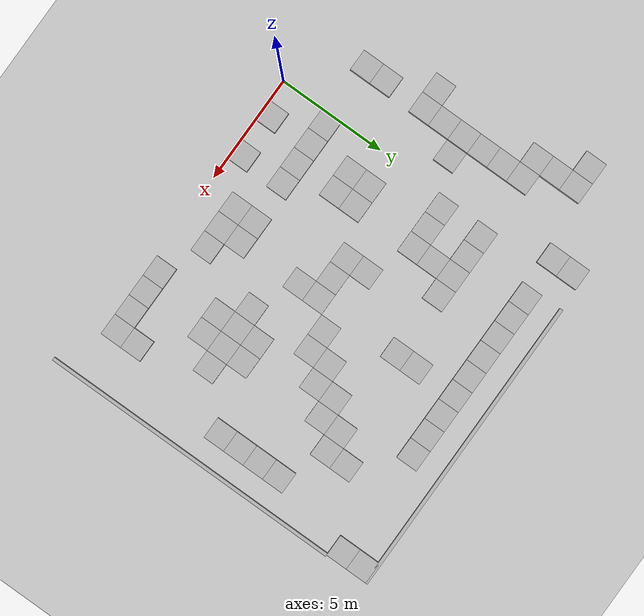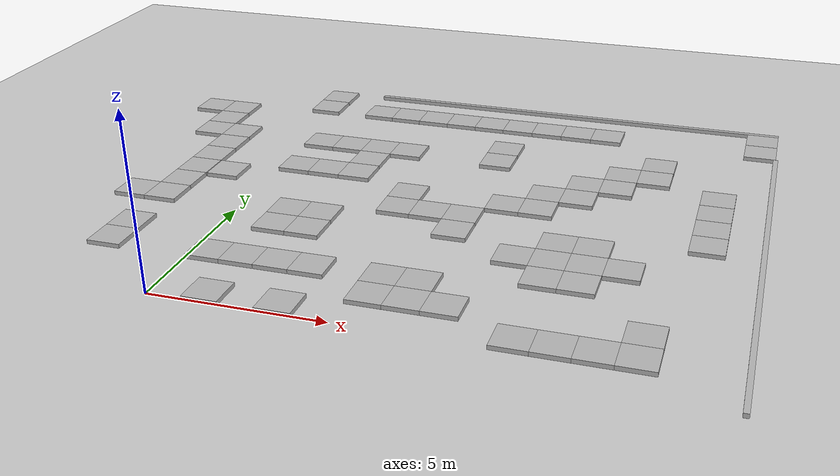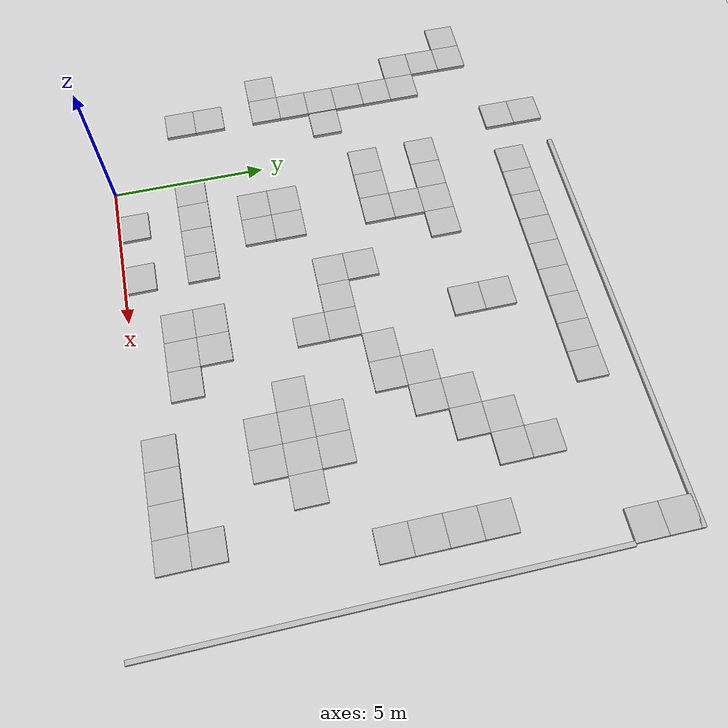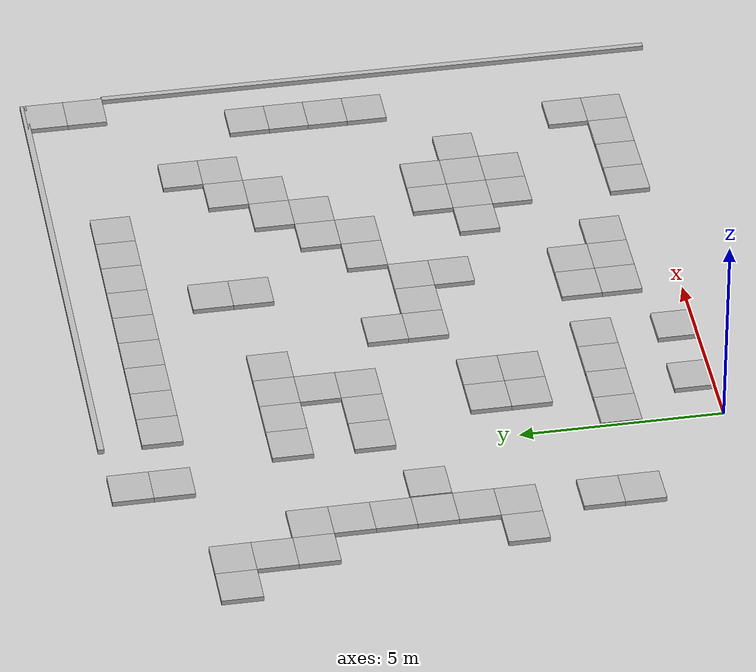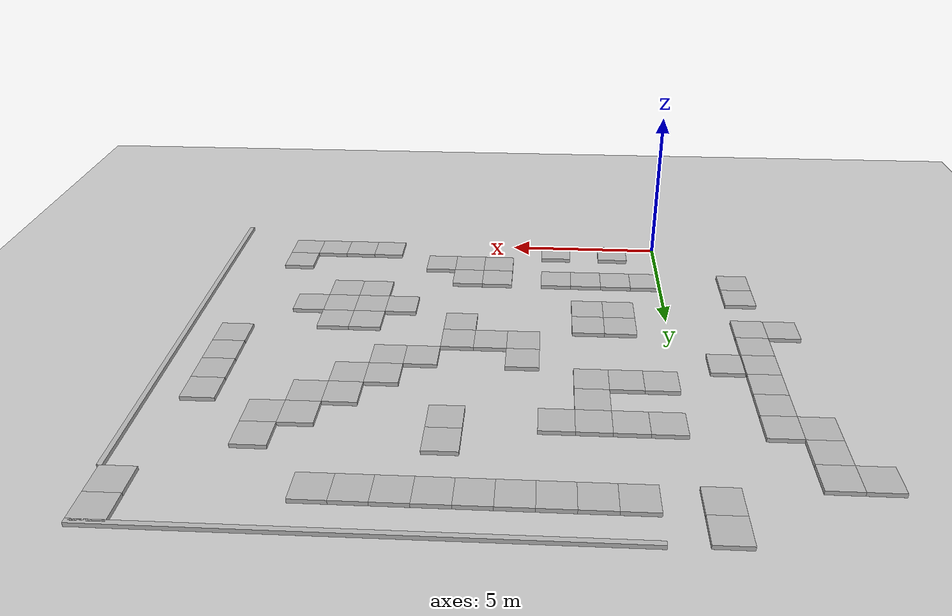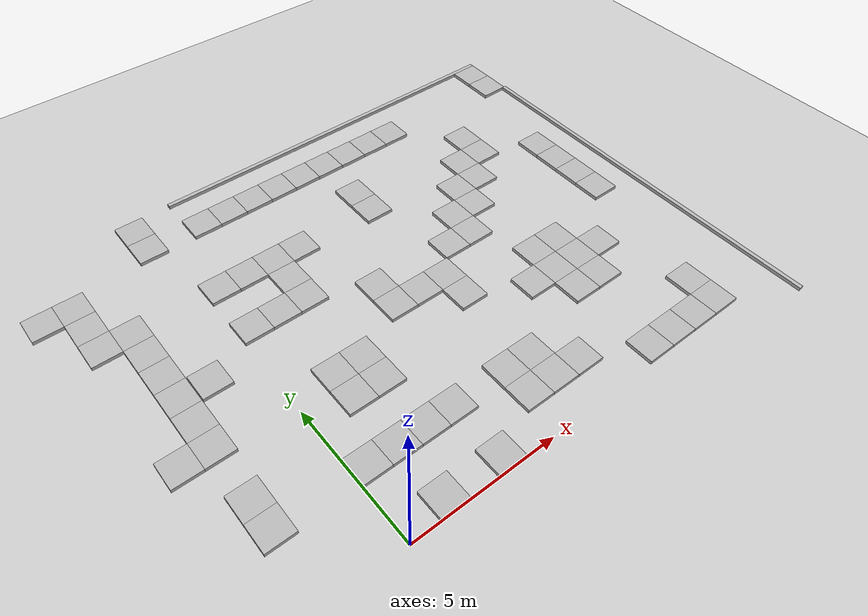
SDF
<sdf version="1.7">
 <world name="default">
  <model name="ground_plane">
   <static>1</static>
   <link name="link">
    <collision name="collision">
     <geometry><plane><normal>0 0 1</normal><size>100 100</size></plane></geometry>
     <surface>
      <contact><collide_bitmask>65535</collide_bitmask></contact>
      <friction><ode><mu>100</mu><mu2>50</mu2></ode></friction>
     </surface>
    </collision>
    <visual name="visual">
     <cast_shadows>0</cast_shadows>
     <geometry><plane><normal>0 0 1</normal><size>100 100</size></plane></geometry>
     <material>
      <script><uri>file://media/materials/scripts/gazebo.material</uri><name>Gazebo/Grey</name></script>
     </material>
    </visual>
   </link>
  </model>
  <model name="concrete_barrier_14m_0">
   <static>1</static>
   <link name="link">
    <collision name="concrete_barrier_14m_01">
     <pose>-0 0 0.3 0 -0 0</pose>
     <geometry><box><size>14 0.15 0.6</size></box></geometry>
    </collision>
    <visual name="concrete_barrier_14m_visual">
     <geometry><mesh><uri>model://concrete_barrier_14m/meshes/concrete_barrier_14m.dae</uri></mesh></geometry>
    </visual>
   </link>
   <pose>15 6 0 0 -0 0</pose>
  </model>
  <model name="concrete_barrier_14m_4">
   <static>1</static>
   <link name="link">
    <collision name="concrete_barrier_14m_01">
     <pose>-0 0 0.3 0 -0 0</pose>
     <geometry><box><size>14 0.15 0.6</size></box></geometry>
    </collision>
    <visual name="concrete_barrier_14m_visual">
     <geometry><mesh><uri>model://concrete_barrier_14m/meshes/concrete_barrier_14m.dae</uri></mesh></geometry>
    </visual>
   </link>
   <pose>8 15 0 0 0 -1.56953</pose>
  </model>
  <model name="concrete_cube_1m">
   <static>1</static>
   <link name="link">
    <collision name="concrete_cube_1m">
     <pose>-0 0 0.3 0 -0 0</pose>
     <geometry><box><size>1 1 0.6</size></box></geometry>
    </collision>
    <visual name="concrete_cube_1m_visual">
     <geometry><mesh><uri>model://concrete_cube_1m/meshes/concrete_cube_1m.dae</uri></mesh></geometry>
    </visual>
   </link>
   <pose>-2.5 6.5 0 0 -0 0</pose>
  </model>
  <model name="concrete_cube_1m_1">
   <static>1</static>
   <link name="link">
    <collision name="concrete_cube_1m">
     <pose>-0 0 0.3 0 -0 0</pose>
     <geometry><box><size>1 1 0.6</size></box></geometry>
    </collision>
    <visual name="concrete_cube_1m_visual">
     <geometry><mesh><uri>model://concrete_cube_1m/meshes/concrete_cube_1m.dae</uri></mesh></geometry>
    </visual>
   </link>
   <pose>-2.5 5.5 0 0 -0 0</pose>
  </model>
  <model name="concrete_cube_1m_4">
   <static>1</static>
   <link name="link">
    <collision name="concrete_cube_1m">
     <pose>-0 0 0.3 0 -0 0</pose>
     <geometry><box><size>1 1 0.6</size></box></geometry>
    </collision>
    <visual name="concrete_cube_1m_visual">
     <geometry><mesh><uri>model://concrete_cube_1m/meshes/concrete_cube_1m.dae</uri></mesh></geometry>
    </visual>
   </link>
   <pose>6.5 2.5 0 0 -0 0</pose>
  </model>
  <model name="concrete_cube_1m_5">
   <static>1</static>
   <link name="link">
    <collision name="concrete_cube_1m">
     <pose>-0 0 0.3 0 -0 0</pose>
     <geometry><box><size>1 1 0.6</size></box></geometry>
    </collision>
    <visual name="concrete_cube_1m_visual">
     <geometry><mesh><uri>model://concrete_cube_1m/meshes/concrete_cube_1m.dae</uri></mesh></geometry>
    </visual>
   </link>
   <pose>5.5 2.5 0 0 -0 0</pose>
  </model>
  <model name="concrete_cube_1m_6">
   <static>1</static>
   <link name="link">
    <collision name="concrete_cube_1m">
     <pose>-0 0 0.3 0 -0 0</pose>
     <geometry><box><size>1 1 0.6</size></box></geometry>
    </collision>
    <visual name="concrete_cube_1m_visual">
     <geometry><mesh><uri>model://concrete_cube_1m/meshes/concrete_cube_1m.dae</uri></mesh></geometry>
    </visual>
   </link>
   <pose>6.5 1.5 0 0 -0 0</pose>
  </model>
  <model name="concrete_cube_1m_7">
   <static>1</static>
   <link name="link">
    <collision name="concrete_cube_1m">
     <pose>-0 0 0.3 0 -0 0</pose>
     <geometry><box><size>1 1 0.6</size></box></geometry>
    </collision>
    <visual name="concrete_cube_1m_visual">
     <geometry><mesh><uri>model://concrete_cube_1m/meshes/concrete_cube_1m.dae</uri></mesh></geometry>
    </visual>
   </link>
   <pose>5.5 1.5 0 0 -0 0</pose>
  </model>
  <model name="concrete_cube_1m_17">
   <static>1</static>
   <link name="link">
    <collision name="concrete_cube_1m">
     <pose>-0 0 0.3 0 -0 0</pose>
     <geometry><box><size>1 1 0.6</size></box></geometry>
    </collision>
    <visual name="concrete_cube_1m_visual">
     <geometry><mesh><uri>model://concrete_cube_1m/meshes/concrete_cube_1m.dae</uri></mesh></geometry>
    </visual>
   </link>
   <pose>2.5 5.5 0 0 -0 0</pose>
  </model>
  <model name="concrete_cube_1m_18">
   <static>1</static>
   <link name="link">
    <collision name="concrete_cube_1m">
     <pose>-0 0 0.3 0 -0 0</pose>
     <geometry><box><size>1 1 0.6</size></box></geometry>
    </collision>
    <visual name="concrete_cube_1m_visual">
     <geometry><mesh><uri>model://concrete_cube_1m/meshes/concrete_cube_1m.dae</uri></mesh></geometry>
    </visual>
   </link>
   <pose>8.5 8.5 0 0 -0 0</pose>
  </model>
  <model name="concrete_cube_1m_19">
   <static>1</static>
   <link name="link">
    <collision name="concrete_cube_1m">
     <pose>-0 0 0.3 0 -0 0</pose>
     <geometry><box><size>1 1 0.6</size></box></geometry>
    </collision>
    <visual name="concrete_cube_1m_visual">
     <geometry><mesh><uri>model://concrete_cube_1m/meshes/concrete_cube_1m.dae</uri></mesh></geometry>
    </visual>
   </link>
   <pose>7.5 7.5 0 0 -0 0</pose>
  </model>
  <model name="concrete_cube_1m_20">
   <static>1</static>
   <link name="link">
    <collision name="concrete_cube_1m">
     <pose>-0 0 0.3 0 -0 0</pose>
     <geometry><box><size>1 1 0.6</size></box></geometry>
    </collision>
    <visual name="concrete_cube_1m_visual">
     <geometry><mesh><uri>model://concrete_cube_1m/meshes/concrete_cube_1m.dae</uri></mesh></geometry>
    </visual>
   </link>
   <pose>6.5 6.5 0 0 -0 0</pose>
  </model>
  <model name="concrete_cube_1m_21">
   <static>1</static>
   <link name="link">
    <collision name="concrete_cube_1m">
     <pose>-0 0 0.3 0 -0 0</pose>
     <geometry><box><size>1 1 0.6</size></box></geometry>
    </collision>
    <visual name="concrete_cube_1m_visual">
     <geometry><mesh><uri>model://concrete_cube_1m/meshes/concrete_cube_1m.dae</uri></mesh></geometry>
    </visual>
   </link>
   <pose>6.5 5.5 0 0 -0 0</pose>
  </model>
  <model name="concrete_cube_1m_22">
   <static>1</static>
   <link name="link">
    <collision name="concrete_cube_1m">
     <pose>-0 0 0.3 0 -0 0</pose>
     <geometry><box><size>1 1 0.6</size></box></geometry>
    </collision>
    <visual name="concrete_cube_1m_visual">
     <geometry><mesh><uri>model://concrete_cube_1m/meshes/concrete_cube_1m.dae</uri></mesh></geometry>
    </visual>
   </link>
   <pose>5.5 6.5 0 0 -0 0</pose>
  </model>
  <model name="concrete_cube_1m_23">
   <static>1</static>
   <link name="link">
    <collision name="concrete_cube_1m">
     <pose>-0 0 0.3 0 -0 0</pose>
     <geometry><box><size>1 1 0.6</size></box></geometry>
    </collision>
    <visual name="concrete_cube_1m_visual">
     <geometry><mesh><uri>model://concrete_cube_1m/meshes/concrete_cube_1m.dae</uri></mesh></geometry>
    </visual>
   </link>
   <pose>4.5 6.5 0 0 -0 0</pose>
  </model>
  <model name="concrete_cube_1m_24">
   <static>1</static>
   <link name="link">
    <collision name="concrete_cube_1m">
     <pose>-0 0 0.3 0 -0 0</pose>
     <geometry><box><size>1 1 0.6</size></box></geometry>
    </collision>
    <visual name="concrete_cube_1m_visual">
     <geometry><mesh><uri>model://concrete_cube_1m/meshes/concrete_cube_1m.dae</uri></mesh></geometry>
    </visual>
   </link>
   <pose>4.5 7.5 0 0 -0 0</pose>
  </model>
  <model name="concrete_cube_1m_25">
   <static>1</static>
   <link name="link">
    <collision name="concrete_cube_1m">
     <pose>-0 0 0.3 0 -0 0</pose>
     <geometry><box><size>1 1 0.6</size></box></geometry>
    </collision>
    <visual name="concrete_cube_1m_visual">
     <geometry><mesh><uri>model://concrete_cube_1m/meshes/concrete_cube_1m.dae</uri></mesh></geometry>
    </visual>
   </link>
   <pose>3.5 2.5 0 0 -0 0</pose>
  </model>
  <model name="concrete_cube_1m_26">
   <static>1</static>
   <link name="link">
    <collision name="concrete_cube_1m">
     <pose>-0 0 0.3 0 -0 0</pose>
     <geometry><box><size>1 1 0.6</size></box></geometry>
    </collision>
    <visual name="concrete_cube_1m_visual">
     <geometry><mesh><uri>model://concrete_cube_1m/meshes/concrete_cube_1m.dae</uri></mesh></geometry>
    </visual>
   </link>
   <pose>2.5 2.5 0 0 -0 0</pose>
  </model>
  <model name="concrete_cube_1m_27">
   <static>1</static>
   <link name="link">
    <collision name="concrete_cube_1m">
     <pose>-0 0 0.3 0 -0 0</pose>
     <geometry><box><size>1 1 0.6</size></box></geometry>
    </collision>
    <visual name="concrete_cube_1m_visual">
     <geometry><mesh><uri>model://concrete_cube_1m/meshes/concrete_cube_1m.dae</uri></mesh></geometry>
    </visual>
   </link>
   <pose>1.5 2.5 0 0 -0 0</pose>
  </model>
  <model name="concrete_cube_1m_28">
   <static>1</static>
   <link name="link">
    <collision name="concrete_cube_1m">
     <pose>-0 0 0.3 0 -0 0</pose>
     <geometry><box><size>1 1 0.6</size></box></geometry>
    </collision>
    <visual name="concrete_cube_1m_visual">
     <geometry><mesh><uri>model://concrete_cube_1m/meshes/concrete_cube_1m.dae</uri></mesh></geometry>
    </visual>
   </link>
   <pose>0.5 2.5 0 0 -0 0</pose>
  </model>
  <model name="concrete_cube_1m_29">
   <static>1</static>
   <link name="link">
    <collision name="concrete_cube_1m">
     <pose>-0 0 0.3 0 -0 0</pose>
     <geometry><box><size>1 1 0.6</size></box></geometry>
    </collision>
    <visual name="concrete_cube_1m_visual">
     <geometry><mesh><uri>model://concrete_cube_1m/meshes/concrete_cube_1m.dae</uri></mesh></geometry>
    </visual>
   </link>
   <pose>1.5 4.5 0 0 -0 0</pose>
  </model>
  <model name="concrete_cube_1m_30">
   <static>1</static>
   <link name="link">
    <collision name="concrete_cube_1m">
     <pose>-0 0 0.3 0 -0 0</pose>
     <geometry><box><size>1 1 0.6</size></box></geometry>
    </collision>
    <visual name="concrete_cube_1m_visual">
     <geometry><mesh><uri>model://concrete_cube_1m/meshes/concrete_cube_1m.dae</uri></mesh></geometry>
    </visual>
   </link>
   <pose>8.5 4.5 0 0 -0 0</pose>
  </model>
  <model name="concrete_cube_1m_31">
   <static>1</static>
   <link name="link">
    <collision name="concrete_cube_1m">
     <pose>-0 0 0.3 0 -0 0</pose>
     <geometry><box><size>1 1 0.6</size></box></geometry>
    </collision>
    <visual name="concrete_cube_1m_visual">
     <geometry><mesh><uri>model://concrete_cube_1m/meshes/concrete_cube_1m.dae</uri></mesh></geometry>
    </visual>
   </link>
   <pose>9.5 4.5 0 0 -0 0</pose>
  </model>
  <model name="concrete_cube_1m_32">
   <static>1</static>
   <link name="link">
    <collision name="concrete_cube_1m">
     <pose>-0 0 0.3 0 -0 0</pose>
     <geometry><box><size>1 1 0.6</size></box></geometry>
    </collision>
    <visual name="concrete_cube_1m_visual">
     <geometry><mesh><uri>model://concrete_cube_1m/meshes/concrete_cube_1m.dae</uri></mesh></geometry>
    </visual>
   </link>
   <pose>9.5 3.5 0 0 -0 0</pose>
  </model>
  <model name="concrete_cube_1m_33">
   <static>1</static>
   <link name="link">
    <collision name="concrete_cube_1m">
     <pose>-0 0 0.3 0 -0 0</pose>
     <geometry><box><size>1 1 0.6</size></box></geometry>
    </collision>
    <visual name="concrete_cube_1m_visual">
     <geometry><mesh><uri>model://concrete_cube_1m/meshes/concrete_cube_1m.dae</uri></mesh></geometry>
    </visual>
   </link>
   <pose>9.5 5.5 0 0 -0 0</pose>
  </model>
  <model name="concrete_cube_1m_34">
   <static>1</static>
   <link name="link">
    <collision name="concrete_cube_1m">
     <pose>-0 0 0.3 0 -0 0</pose>
     <geometry><box><size>1 1 0.6</size></box></geometry>
    </collision>
    <visual name="concrete_cube_1m_visual">
     <geometry><mesh><uri>model://concrete_cube_1m/meshes/concrete_cube_1m.dae</uri></mesh></geometry>
    </visual>
   </link>
   <pose>7.5 1.5 0 0 -0 0</pose>
  </model>
  <model name="concrete_cube_1m_35">
   <static>1</static>
   <link name="link">
    <collision name="concrete_cube_1m">
     <pose>-0 0 0.3 0 -0 0</pose>
     <geometry><box><size>1 1 0.6</size></box></geometry>
    </collision>
    <visual name="concrete_cube_1m_visual">
     <geometry><mesh><uri>model://concrete_cube_1m/meshes/concrete_cube_1m.dae</uri></mesh></geometry>
    </visual>
   </link>
   <pose>9.5 0.5 0 0 -0 0</pose>
  </model>
  <model name="concrete_cube_1m_36">
   <static>1</static>
   <link name="link">
    <collision name="concrete_cube_1m">
     <pose>-0 0 0.3 0 -0 0</pose>
     <geometry><box><size>1 1 0.6</size></box></geometry>
    </collision>
    <visual name="concrete_cube_1m_visual">
     <geometry><mesh><uri>model://concrete_cube_1m/meshes/concrete_cube_1m.dae</uri></mesh></geometry>
    </visual>
   </link>
   <pose>2.5 8.5 0 0 -0 0</pose>
  </model>
  <model name="concrete_cube_1m_37">
   <static>1</static>
   <link name="link">
    <collision name="concrete_cube_1m">
     <pose>-0 0 0.3 0 -0 0</pose>
     <geometry><box><size>1 1 0.6</size></box></geometry>
    </collision>
    <visual name="concrete_cube_1m_visual">
     <geometry><mesh><uri>model://concrete_cube_1m/meshes/concrete_cube_1m.dae</uri></mesh></geometry>
    </visual>
   </link>
   <pose>1.5 8.5 0 0 -0 0</pose>
  </model>
  <model name="concrete_cube_1m_38">
   <static>1</static>
   <link name="link">
    <collision name="concrete_cube_1m">
     <pose>-0 0 0.3 0 -0 0</pose>
     <geometry><box><size>1 1 0.6</size></box></geometry>
    </collision>
    <visual name="concrete_cube_1m_visual">
     <geometry><mesh><uri>model://concrete_cube_1m/meshes/concrete_cube_1m.dae</uri></mesh></geometry>
    </visual>
   </link>
   <pose>0.5 8.5 0 0 -0 0</pose>
  </model>
  <model name="concrete_cube_1m_39">
   <static>1</static>
   <link name="link">
    <collision name="concrete_cube_1m">
     <pose>-0 0 0.3 0 -0 0</pose>
     <geometry><box><size>1 1 0.6</size></box></geometry>
    </collision>
    <visual name="concrete_cube_1m_visual">
     <geometry><mesh><uri>model://concrete_cube_1m/meshes/concrete_cube_1m.dae</uri></mesh></geometry>
    </visual>
   </link>
   <pose>2.5 4.5 0 0 -0 0</pose>
  </model>
  <model name="concrete_cube_1m_40">
   <static>1</static>
   <link name="link">
    <collision name="concrete_cube_1m">
     <pose>-0 0 0.3 0 -0 0</pose>
     <geometry><box><size>1 1 0.6</size></box></geometry>
    </collision>
    <visual name="concrete_cube_1m_visual">
     <geometry><mesh><uri>model://concrete_cube_1m/meshes/concrete_cube_1m.dae</uri></mesh></geometry>
    </visual>
   </link>
   <pose>1.5 5.5 0 0 -0 0</pose>
  </model>
  <model name="concrete_cube_1m_41">
   <static>1</static>
   <link name="link">
    <collision name="concrete_cube_1m">
     <pose>-0 0 0.3 0 -0 0</pose>
     <geometry><box><size>1 1 0.6</size></box></geometry>
    </collision>
    <visual name="concrete_cube_1m_visual">
     <geometry><mesh><uri>model://concrete_cube_1m/meshes/concrete_cube_1m.dae</uri></mesh></geometry>
    </visual>
   </link>
   <pose>3.5 0.5 0 0 -0 0</pose>
  </model>
  <model name="concrete_cube_1m_43">
   <static>1</static>
   <link name="link">
    <collision name="concrete_cube_1m">
     <pose>-0 0 0.3 0 -0 0</pose>
     <geometry><box><size>1 1 0.6</size></box></geometry>
    </collision>
    <visual name="concrete_cube_1m_visual">
     <geometry><mesh><uri>model://concrete_cube_1m/meshes/concrete_cube_1m.dae</uri></mesh></geometry>
    </visual>
   </link>
   <pose>-3.5 5.5 0 0 -0 0</pose>
  </model>
  <model name="concrete_cube_1m_44">
   <static>1</static>
   <link name="link">
    <collision name="concrete_cube_1m">
     <pose>-0 0 0.3 0 -0 0</pose>
     <geometry><box><size>1 1 0.6</size></box></geometry>
    </collision>
    <visual name="concrete_cube_1m_visual">
     <geometry><mesh><uri>model://concrete_cube_1m/meshes/concrete_cube_1m.dae</uri></mesh></geometry>
    </visual>
   </link>
   <pose>-2.5 7.5 0 0 -0 0</pose>
  </model>
  <model name="concrete_cube_1m_59">
   <static>1</static>
   <link name="link">
    <collision name="concrete_cube_1m">
     <pose>-0 0 0.3 0 -0 0</pose>
     <geometry><box><size>1 1 0.6</size></box></geometry>
    </collision>
    <visual name="concrete_cube_1m_visual">
     <geometry><mesh><uri>model://concrete_cube_1m/meshes/concrete_cube_1m.dae</uri></mesh></geometry>
    </visual>
   </link>
   <pose>-1.46855 7.49755 0 0 -0 0</pose>
  </model>
  <model name="concrete_cube_1m_63">
   <static>1</static>
   <link name="link">
    <collision name="concrete_cube_1m">
     <pose>-0 0 0.3 0 -0 0</pose>
     <geometry><box><size>1 1 0.6</size></box></geometry>
    </collision>
    <visual name="concrete_cube_1m_visual">
     <geometry><mesh><uri>model://concrete_cube_1m/meshes/concrete_cube_1m.dae</uri></mesh></geometry>
    </visual>
   </link>
   <pose>-2.5 3.5 0 0 -0 0</pose>
  </model>
  <model name="concrete_cube_1m_113">
   <static>1</static>
   <link name="link">
    <collision name="concrete_cube_1m">
     <pose>-0 0 0.3 0 -0 0</pose>
     <geometry><box><size>1 1 0.6</size></box></geometry>
    </collision>
    <visual name="concrete_cube_1m_visual">
     <geometry><mesh><uri>model://concrete_cube_1m/meshes/concrete_cube_1m.dae</uri></mesh></geometry>
    </visual>
   </link>
   <pose>14.5 14.5 0 0 -0 0</pose>
  </model>
  <model name="concrete_cube_1m_114">
   <static>1</static>
   <link name="link">
    <collision name="concrete_cube_1m">
     <pose>-0 0 0.3 0 -0 0</pose>
     <geometry><box><size>1 1 0.6</size></box></geometry>
    </collision>
    <visual name="concrete_cube_1m_visual">
     <geometry><mesh><uri>model://concrete_cube_1m/meshes/concrete_cube_1m.dae</uri></mesh></geometry>
    </visual>
   </link>
   <pose>14.5 13.5 0 0 -0 0</pose>
  </model>
  <model name="concrete_cube_1m_115">
   <static>1</static>
   <link name="link">
    <collision name="concrete_cube_1m">
     <pose>-0 0 0.3 0 -0 0</pose>
     <geometry><box><size>1 1 0.6</size></box></geometry>
    </collision>
    <visual name="concrete_cube_1m_visual">
     <geometry><mesh><uri>model://concrete_cube_1m/meshes/concrete_cube_1m.dae</uri></mesh></geometry>
    </visual>
   </link>
   <pose>10.5 0.5 0 0 -0 0</pose>
  </model>
  <model name="concrete_cube_1m_116">
   <static>1</static>
   <link name="link">
    <collision name="concrete_cube_1m">
     <pose>-0 0 0.3 0 -0 0</pose>
     <geometry><box><size>1 1 0.6</size></box></geometry>
    </collision>
    <visual name="concrete_cube_1m_visual">
     <geometry><mesh><uri>model://concrete_cube_1m/meshes/concrete_cube_1m.dae</uri></mesh></geometry>
    </visual>
   </link>
   <pose>11.5 0.5 0 0 -0 0</pose>
  </model>
  <model name="concrete_cube_1m_117">
   <static>1</static>
   <link name="link">
    <collision name="concrete_cube_1m">
     <pose>-0 0 0.3 0 -0 0</pose>
     <geometry><box><size>1 1 0.6</size></box></geometry>
    </collision>
    <visual name="concrete_cube_1m_visual">
     <geometry><mesh><uri>model://concrete_cube_1m/meshes/concrete_cube_1m.dae</uri></mesh></geometry>
    </visual>
   </link>
   <pose>12.5 0.5 0 0 -0 0</pose>
  </model>
  <model name="concrete_cube_1m_118">
   <static>1</static>
   <link name="link">
    <collision name="concrete_cube_1m">
     <pose>-0 0 0.3 0 -0 0</pose>
     <geometry><box><size>1 1 0.6</size></box></geometry>
    </collision>
    <visual name="concrete_cube_1m_visual">
     <geometry><mesh><uri>model://concrete_cube_1m/meshes/concrete_cube_1m.dae</uri></mesh></geometry>
    </visual>
   </link>
   <pose>12.5 1.5 0 0 -0 0</pose>
  </model>
  <model name="concrete_cube_1m_119">
   <static>1</static>
   <link name="link">
    <collision name="concrete_cube_1m">
     <pose>-0 0 0.3 0 -0 0</pose>
     <geometry><box><size>1 1 0.6</size></box></geometry>
    </collision>
    <visual name="concrete_cube_1m_visual">
     <geometry><mesh><uri>model://concrete_cube_1m/meshes/concrete_cube_1m.dae</uri></mesh></geometry>
    </visual>
   </link>
   <pose>10.5 3.5 0 0 -0 0</pose>
  </model>
  <model name="concrete_cube_1m_120">
   <static>1</static>
   <link name="link">
    <collision name="concrete_cube_1m">
     <pose>-0 0 0.3 0 -0 0</pose>
     <geometry><box><size>1 1 0.6</size></box></geometry>
    </collision>
    <visual name="concrete_cube_1m_visual">
     <geometry><mesh><uri>model://concrete_cube_1m/meshes/concrete_cube_1m.dae</uri></mesh></geometry>
    </visual>
   </link>
   <pose>10.5 4.5 0 0 -0 0</pose>
  </model>
  <model name="concrete_cube_1m_121">
   <static>1</static>
   <link name="link">
    <collision name="concrete_cube_1m">
     <pose>-0 0 0.3 0 -0 0</pose>
     <geometry><box><size>1 1 0.6</size></box></geometry>
    </collision>
    <visual name="concrete_cube_1m_visual">
     <geometry><mesh><uri>model://concrete_cube_1m/meshes/concrete_cube_1m.dae</uri></mesh></geometry>
    </visual>
   </link>
   <pose>10.5 5.5 0 0 -0 0</pose>
  </model>
  <model name="concrete_cube_1m_122">
   <static>1</static>
   <link name="link">
    <collision name="concrete_cube_1m">
     <pose>-0 0 0.3 0 -0 0</pose>
     <geometry><box><size>1 1 0.6</size></box></geometry>
    </collision>
    <visual name="concrete_cube_1m_visual">
     <geometry><mesh><uri>model://concrete_cube_1m/meshes/concrete_cube_1m.dae</uri></mesh></geometry>
    </visual>
   </link>
   <pose>11.5 4.5 0 0 -0 0</pose>
  </model>
  <model name="concrete_cube_1m_123">
   <static>1</static>
   <link name="link">
    <collision name="concrete_cube_1m">
     <pose>-0 0 0.3 0 -0 0</pose>
     <geometry><box><size>1 1 0.6</size></box></geometry>
    </collision>
    <visual name="concrete_cube_1m_visual">
     <geometry><mesh><uri>model://concrete_cube_1m/meshes/concrete_cube_1m.dae</uri></mesh></geometry>
    </visual>
   </link>
   <pose>9.5 9.5 0 0 -0 0</pose>
  </model>
  <model name="concrete_cube_1m_124">
   <static>1</static>
   <link name="link">
    <collision name="concrete_cube_1m">
     <pose>-0 0 0.3 0 -0 0</pose>
     <geometry><box><size>1 1 0.6</size></box></geometry>
    </collision>
    <visual name="concrete_cube_1m_visual">
     <geometry><mesh><uri>model://concrete_cube_1m/meshes/concrete_cube_1m.dae</uri></mesh></geometry>
    </visual>
   </link>
   <pose>10.5 10.5 0 0 -0 0</pose>
  </model>
  <model name="concrete_cube_1m_125">
   <static>1</static>
   <link name="link">
    <collision name="concrete_cube_1m">
     <pose>-0 0 0.3 0 -0 0</pose>
     <geometry><box><size>1 1 0.6</size></box></geometry>
    </collision>
    <visual name="concrete_cube_1m_visual">
     <geometry><mesh><uri>model://concrete_cube_1m/meshes/concrete_cube_1m.dae</uri></mesh></geometry>
    </visual>
   </link>
   <pose>10.5 9.5 0 0 -0 0</pose>
  </model>
  <model name="concrete_cube_1m_126">
   <static>1</static>
   <link name="link">
    <collision name="concrete_cube_1m">
     <pose>-0 0 0.3 0 -0 0</pose>
     <geometry><box><size>1 1 0.6</size></box></geometry>
    </collision>
    <visual name="concrete_cube_1m_visual">
     <geometry><mesh><uri>model://concrete_cube_1m/meshes/concrete_cube_1m.dae</uri></mesh></geometry>
    </visual>
   </link>
   <pose>9.5 8.5 0 0 -0 0</pose>
  </model>
  <model name="concrete_cube_1m_127">
   <static>1</static>
   <link name="link">
    <collision name="concrete_cube_1m">
     <pose>-0 0 0.3 0 -0 0</pose>
     <geometry><box><size>1 1 0.6</size></box></geometry>
    </collision>
    <visual name="concrete_cube_1m_visual">
     <geometry><mesh><uri>model://concrete_cube_1m/meshes/concrete_cube_1m.dae</uri></mesh></geometry>
    </visual>
   </link>
   <pose>8.5 7.5 0 0 -0 0</pose>
  </model>
  <model name="concrete_cube_1m_128">
   <static>1</static>
   <link name="link">
    <collision name="concrete_cube_1m">
     <pose>-0 0 0.3 0 -0 0</pose>
     <geometry><box><size>1 1 0.6</size></box></geometry>
    </collision>
    <visual name="concrete_cube_1m_visual">
     <geometry><mesh><uri>model://concrete_cube_1m/meshes/concrete_cube_1m.dae</uri></mesh></geometry>
    </visual>
   </link>
   <pose>11.5 10.5 0 0 -0 0</pose>
  </model>
  <model name="concrete_cube_1m_129">
   <static>1</static>
   <link name="link">
    <collision name="concrete_cube_1m">
     <pose>-0 0 0.3 0 -0 0</pose>
     <geometry><box><size>1 1 0.6</size></box></geometry>
    </collision>
    <visual name="concrete_cube_1m_visual">
     <geometry><mesh><uri>model://concrete_cube_1m/meshes/concrete_cube_1m.dae</uri></mesh></geometry>
    </visual>
   </link>
   <pose>11.5 11.5 0 0 -0 0</pose>
  </model>
  <model name="concrete_cube_1m_130">
   <static>1</static>
   <link name="link">
    <collision name="concrete_cube_1m">
     <pose>-0 0 0.3 0 -0 0</pose>
     <geometry><box><size>1 1 0.6</size></box></geometry>
    </collision>
    <visual name="concrete_cube_1m_visual">
     <geometry><mesh><uri>model://concrete_cube_1m/meshes/concrete_cube_1m.dae</uri></mesh></geometry>
    </visual>
   </link>
   <pose>2.5 9.5 0 0 -0 0</pose>
  </model>
  <model name="concrete_cube_1m_131">
   <static>1</static>
   <link name="link">
    <collision name="concrete_cube_1m">
     <pose>-0 0 0.3 0 -0 0</pose>
     <geometry><box><size>1 1 0.6</size></box></geometry>
    </collision>
    <visual name="concrete_cube_1m_visual">
     <geometry><mesh><uri>model://concrete_cube_1m/meshes/concrete_cube_1m.dae</uri></mesh></geometry>
    </visual>
   </link>
   <pose>2.5 10.5 0 0 -0 0</pose>
  </model>
  <model name="concrete_cube_1m_132">
   <static>1</static>
   <link name="link">
    <collision name="concrete_cube_1m">
     <pose>-0 0 0.3 0 -0 0</pose>
     <geometry><box><size>1 1 0.6</size></box></geometry>
    </collision>
    <visual name="concrete_cube_1m_visual">
     <geometry><mesh><uri>model://concrete_cube_1m/meshes/concrete_cube_1m.dae</uri></mesh></geometry>
    </visual>
   </link>
   <pose>1.5 10.5 0 0 -0 0</pose>
  </model>
  <model name="concrete_cube_1m_133">
   <static>1</static>
   <link name="link">
    <collision name="concrete_cube_1m">
     <pose>-0 0 0.3 0 -0 0</pose>
     <geometry><box><size>1 1 0.6</size></box></geometry>
    </collision>
    <visual name="concrete_cube_1m_visual">
     <geometry><mesh><uri>model://concrete_cube_1m/meshes/concrete_cube_1m.dae</uri></mesh></geometry>
    </visual>
   </link>
   <pose>0.5 10.5 0 0 -0 0</pose>
  </model>
  <model name="concrete_cube_1m_134">
   <static>1</static>
   <link name="link">
    <collision name="concrete_cube_1m">
     <pose>-0 0 0.3 0 -0 0</pose>
     <geometry><box><size>1 1 0.6</size></box></geometry>
    </collision>
    <visual name="concrete_cube_1m_visual">
     <geometry><mesh><uri>model://concrete_cube_1m/meshes/concrete_cube_1m.dae</uri></mesh></geometry>
    </visual>
   </link>
   <pose>3.5 10.5 0 0 -0 0</pose>
  </model>
  <model name="concrete_cube_1m_135">
   <static>1</static>
   <link name="link">
    <collision name="concrete_cube_1m">
     <pose>-0 0 0.3 0 -0 0</pose>
     <geometry><box><size>1 1 0.6</size></box></geometry>
    </collision>
    <visual name="concrete_cube_1m_visual">
     <geometry><mesh><uri>model://concrete_cube_1m/meshes/concrete_cube_1m.dae</uri></mesh></geometry>
    </visual>
   </link>
   <pose>9.5 13.5 0 0 -0 0</pose>
  </model>
  <model name="concrete_cube_1m_136">
   <static>1</static>
   <link name="link">
    <collision name="concrete_cube_1m">
     <pose>-0 0 0.3 0 -0 0</pose>
     <geometry><box><size>1 1 0.6</size></box></geometry>
    </collision>
    <visual name="concrete_cube_1m_visual">
     <geometry><mesh><uri>model://concrete_cube_1m/meshes/concrete_cube_1m.dae</uri></mesh></geometry>
    </visual>
   </link>
   <pose>8.5 13.5 0 0 -0 0</pose>
  </model>
  <model name="concrete_cube_1m_137">
   <static>1</static>
   <link name="link">
    <collision name="concrete_cube_1m">
     <pose>-0 0 0.3 0 -0 0</pose>
     <geometry><box><size>1 1 0.6</size></box></geometry>
    </collision>
    <visual name="concrete_cube_1m_visual">
     <geometry><mesh><uri>model://concrete_cube_1m/meshes/concrete_cube_1m.dae</uri></mesh></geometry>
    </visual>
   </link>
   <pose>7.5 13.5 0 0 -0 0</pose>
  </model>
  <model name="concrete_cube_1m_138">
   <static>1</static>
   <link name="link">
    <collision name="concrete_cube_1m">
     <pose>-0 0 0.3 0 -0 0</pose>
     <geometry><box><size>1 1 0.6</size></box></geometry>
    </collision>
    <visual name="concrete_cube_1m_visual">
     <geometry><mesh><uri>model://concrete_cube_1m/meshes/concrete_cube_1m.dae</uri></mesh></geometry>
    </visual>
   </link>
   <pose>6.5 13.5 0 0 -0 0</pose>
  </model>
  <model name="concrete_cube_1m_139">
   <static>1</static>
   <link name="link">
    <collision name="concrete_cube_1m">
     <pose>-0 0 0.3 0 -0 0</pose>
     <geometry><box><size>1 1 0.6</size></box></geometry>
    </collision>
    <visual name="concrete_cube_1m_visual">
     <geometry><mesh><uri>model://concrete_cube_1m/meshes/concrete_cube_1m.dae</uri></mesh></geometry>
    </visual>
   </link>
   <pose>5.5 13.5 0 0 -0 0</pose>
  </model>
  <model name="concrete_cube_1m_140">
   <static>1</static>
   <link name="link">
    <collision name="concrete_cube_1m">
     <pose>-0 0 0.3 0 -0 0</pose>
     <geometry><box><size>1 1 0.6</size></box></geometry>
    </collision>
    <visual name="concrete_cube_1m_visual">
     <geometry><mesh><uri>model://concrete_cube_1m/meshes/concrete_cube_1m.dae</uri></mesh></geometry>
    </visual>
   </link>
   <pose>4.5 13.5 0 0 -0 0</pose>
  </model>
  <model name="concrete_cube_1m_141">
   <static>1</static>
   <link name="link">
    <collision name="concrete_cube_1m">
     <pose>-0 0 0.3 0 -0 0</pose>
     <geometry><box><size>1 1 0.6</size></box></geometry>
    </collision>
    <visual name="concrete_cube_1m_visual">
     <geometry><mesh><uri>model://concrete_cube_1m/meshes/concrete_cube_1m.dae</uri></mesh></geometry>
    </visual>
   </link>
   <pose>3.5 13.5 0 0 -0 0</pose>
  </model>
  <model name="concrete_cube_1m_142">
   <static>1</static>
   <link name="link">
    <collision name="concrete_cube_1m">
     <pose>-0 0 0.3 0 -0 0</pose>
     <geometry><box><size>1 1 0.6</size></box></geometry>
    </collision>
    <visual name="concrete_cube_1m_visual">
     <geometry><mesh><uri>model://concrete_cube_1m/meshes/concrete_cube_1m.dae</uri></mesh></geometry>
    </visual>
   </link>
   <pose>2.5 13.5 0 0 -0 0</pose>
  </model>
  <model name="concrete_cube_1m_143">
   <static>1</static>
   <link name="link">
    <collision name="concrete_cube_1m">
     <pose>-0 0 0.3 0 -0 0</pose>
     <geometry><box><size>1 1 0.6</size></box></geometry>
    </collision>
    <visual name="concrete_cube_1m_visual">
     <geometry><mesh><uri>model://concrete_cube_1m/meshes/concrete_cube_1m.dae</uri></mesh></geometry>
    </visual>
   </link>
   <pose>6.5 10.5 0 0 -0 0</pose>
  </model>
  <model name="concrete_cube_1m_144">
   <static>1</static>
   <link name="link">
    <collision name="concrete_cube_1m">
     <pose>-0 0 0.3 0 -0 0</pose>
     <geometry><box><size>1 1 0.6</size></box></geometry>
    </collision>
    <visual name="concrete_cube_1m_visual">
     <geometry><mesh><uri>model://concrete_cube_1m/meshes/concrete_cube_1m.dae</uri></mesh></geometry>
    </visual>
   </link>
   <pose>6.5 11.5 0 0 -0 0</pose>
  </model>
  <model name="concrete_cube_1m_145">
   <static>1</static>
   <link name="link">
    <collision name="concrete_cube_1m">
     <pose>-0 0 0.3 0 -0 0</pose>
     <geometry><box><size>1 1 0.6</size></box></geometry>
    </collision>
    <visual name="concrete_cube_1m_visual">
     <geometry><mesh><uri>model://concrete_cube_1m/meshes/concrete_cube_1m.dae</uri></mesh></geometry>
    </visual>
   </link>
   <pose>1.5 0.5 0 0 -0 0</pose>
  </model>
  <model name="concrete_cube_1m_147">
   <static>1</static>
   <link name="link">
    <collision name="concrete_cube_1m">
     <pose>-0 0 0.3 0 -0 0</pose>
     <geometry><box><size>1 1 0.6</size></box></geometry>
    </collision>
    <visual name="concrete_cube_1m_visual">
     <geometry><mesh><uri>model://concrete_cube_1m/meshes/concrete_cube_1m.dae</uri></mesh></geometry>
    </visual>
   </link>
   <pose>13.5 6.5 0 0 -0 0</pose>
  </model>
  <model name="concrete_cube_1m_148">
   <static>1</static>
   <link name="link">
    <collision name="concrete_cube_1m">
     <pose>-0 0 0.3 0 -0 0</pose>
     <geometry><box><size>1 1 0.6</size></box></geometry>
    </collision>
    <visual name="concrete_cube_1m_visual">
     <geometry><mesh><uri>model://concrete_cube_1m/meshes/concrete_cube_1m.dae</uri></mesh></geometry>
    </visual>
   </link>
   <pose>13.5 7.5 0 0 -0 0</pose>
  </model>
  <model name="concrete_cube_1m_149">
   <static>1</static>
   <link name="link">
    <collision name="concrete_cube_1m">
     <pose>-0 0 0.3 0 -0 0</pose>
     <geometry><box><size>1 1 0.6</size></box></geometry>
    </collision>
    <visual name="concrete_cube_1m_visual">
     <geometry><mesh><uri>model://concrete_cube_1m/meshes/concrete_cube_1m.dae</uri></mesh></geometry>
    </visual>
   </link>
   <pose>13.5 8.5 0 0 -0 0</pose>
  </model>
  <model name="concrete_cube_1m_150">
   <static>1</static>
   <link name="link">
    <collision name="concrete_cube_1m">
     <pose>-0 0 0.3 0 -0 0</pose>
     <geometry><box><size>1 1 0.6</size></box></geometry>
    </collision>
    <visual name="concrete_cube_1m_visual">
     <geometry><mesh><uri>model://concrete_cube_1m/meshes/concrete_cube_1m.dae</uri></mesh></geometry>
    </visual>
   </link>
   <pose>13.5 9.5 0 0 -0 0</pose>
  </model>
  <model name="concrete_cube_1m_151">
   <static>1</static>
   <link name="link">
    <collision name="concrete_cube_1m">
     <pose>-0 0 0.3 0 -0 0</pose>
     <geometry><box><size>1 1 0.6</size></box></geometry>
    </collision>
    <visual name="concrete_cube_1m_visual">
     <geometry><mesh><uri>model://concrete_cube_1m/meshes/concrete_cube_1m.dae</uri></mesh></geometry>
    </visual>
   </link>
   <pose>1.5 13.5 0 0 -0 0</pose>
  </model>
  <model name="concrete_cube_1m_160">
   <static>1</static>
   <link name="link">
    <collision name="concrete_cube_1m">
     <pose>-0 0 0.3 0 -0 0</pose>
     <geometry><box><size>1 1 0.6</size></box></geometry>
    </collision>
    <visual name="concrete_cube_1m_visual">
     <geometry><mesh><uri>model://concrete_cube_1m/meshes/concrete_cube_1m.dae</uri></mesh></geometry>
    </visual>
   </link>
   <pose>-2.5 8.5 0 0 -0 0</pose>
  </model>
  <model name="concrete_cube_1m_161">
   <static>1</static>
   <link name="link">
    <collision name="concrete_cube_1m">
     <pose>-0 0 0.3 0 -0 0</pose>
     <geometry><box><size>1 1 0.6</size></box></geometry>
    </collision>
    <visual name="concrete_cube_1m_visual">
     <geometry><mesh><uri>model://concrete_cube_1m/meshes/concrete_cube_1m.dae</uri></mesh></geometry>
    </visual>
   </link>
   <pose>-2.5 9.5 0 0 -0 0</pose>
  </model>
  <model name="concrete_cube_1m_162">
   <static>1</static>
   <link name="link">
    <collision name="concrete_cube_1m">
     <pose>-0 0 0.3 0 -0 0</pose>
     <geometry><box><size>1 1 0.6</size></box></geometry>
    </collision>
    <visual name="concrete_cube_1m_visual">
     <geometry><mesh><uri>model://concrete_cube_1m/meshes/concrete_cube_1m.dae</uri></mesh></geometry>
    </visual>
   </link>
   <pose>-2.5 10.5 0 0 -0 0</pose>
  </model>
  <model name="concrete_cube_1m_163">
   <static>1</static>
   <link name="link">
    <collision name="concrete_cube_1m">
     <pose>-0 0 0.3 0 -0 0</pose>
     <geometry><box><size>1 1 0.6</size></box></geometry>
    </collision>
    <visual name="concrete_cube_1m_visual">
     <geometry><mesh><uri>model://concrete_cube_1m/meshes/concrete_cube_1m.dae</uri></mesh></geometry>
    </visual>
   </link>
   <pose>-3.5 10.5 0 0 -0 0</pose>
  </model>
  <model name="concrete_cube_1m_164">
   <static>1</static>
   <link name="link">
    <collision name="concrete_cube_1m">
     <pose>-0 0 0.3 0 -0 0</pose>
     <geometry><box><size>1 1 0.6</size></box></geometry>
    </collision>
    <visual name="concrete_cube_1m_visual">
     <geometry><mesh><uri>model://concrete_cube_1m/meshes/concrete_cube_1m.dae</uri></mesh></geometry>
    </visual>
   </link>
   <pose>-3.5 11.5 0 0 -0 0</pose>
  </model>
  <model name="concrete_cube_1m_165">
   <static>1</static>
   <link name="link">
    <collision name="concrete_cube_1m">
     <pose>-0 0 0.3 0 -0 0</pose>
     <geometry><box><size>1 1 0.6</size></box></geometry>
    </collision>
    <visual name="concrete_cube_1m_visual">
     <geometry><mesh><uri>model://concrete_cube_1m/meshes/concrete_cube_1m.dae</uri></mesh></geometry>
    </visual>
   </link>
   <pose>-3.5 12.5 0 0 -0 0</pose>
  </model>
  <model name="concrete_cube_1m_166">
   <static>1</static>
   <link name="link">
    <collision name="concrete_cube_1m">
     <pose>-0 0 0.3 0 -0 0</pose>
     <geometry><box><size>1 1 0.6</size></box></geometry>
    </collision>
    <visual name="concrete_cube_1m_visual">
     <geometry><mesh><uri>model://concrete_cube_1m/meshes/concrete_cube_1m.dae</uri></mesh></geometry>
    </visual>
   </link>
   <pose>-4.5 12.5 0 0 -0 0</pose>
  </model>
  <model name="concrete_cube_1m_180">
   <static>1</static>
   <link name="link">
    <collision name="concrete_cube_1m">
     <pose>-0 0 0.3 0 -0 0</pose>
     <geometry><box><size>1 1 0.6</size></box></geometry>
    </collision>
    <visual name="concrete_cube_1m_visual">
     <geometry><mesh><uri>model://concrete_cube_1m/meshes/concrete_cube_1m.dae</uri></mesh></geometry>
    </visual>
   </link>
   <pose>-2.5 2.5 0 0 -0 0</pose>
  </model>
  <model name="concrete_cube_1m_181">
   <static>1</static>
   <link name="link">
    <collision name="concrete_cube_1m">
     <pose>-0 0 0.3 0 -0 0</pose>
     <geometry><box><size>1 1 0.6</size></box></geometry>
    </collision>
    <visual name="concrete_cube_1m_visual">
     <geometry><mesh><uri>model://concrete_cube_1m/meshes/concrete_cube_1m.dae</uri></mesh></geometry>
    </visual>
   </link>
   <pose>-0.5 13.5 0 0 -0 0</pose>
  </model>
  <model name="concrete_cube_1m_182">
   <static>1</static>
   <link name="link">
    <collision name="concrete_cube_1m">
     <pose>-0 0 0.3 0 -0 0</pose>
     <geometry><box><size>1 1 0.6</size></box></geometry>
    </collision>
    <visual name="concrete_cube_1m_visual">
     <geometry><mesh><uri>model://concrete_cube_1m/meshes/concrete_cube_1m.dae</uri></mesh></geometry>
    </visual>
   </link>
   <pose>-0.5 14.5 0 0 -0 0</pose>
  </model>
 </world>
</sdf>
